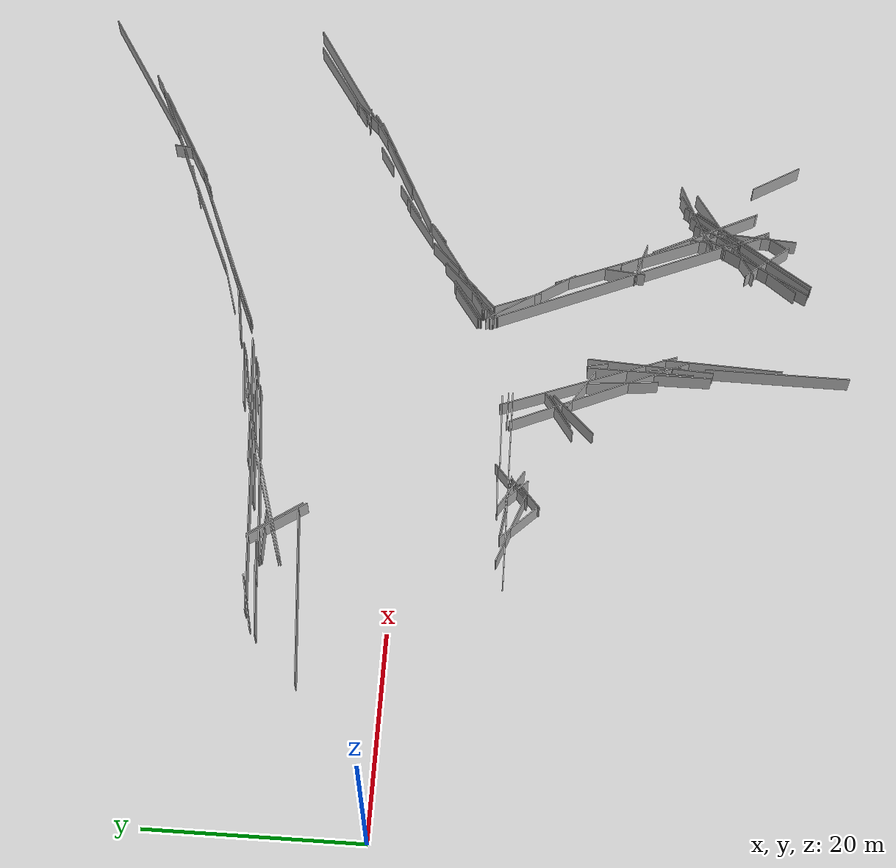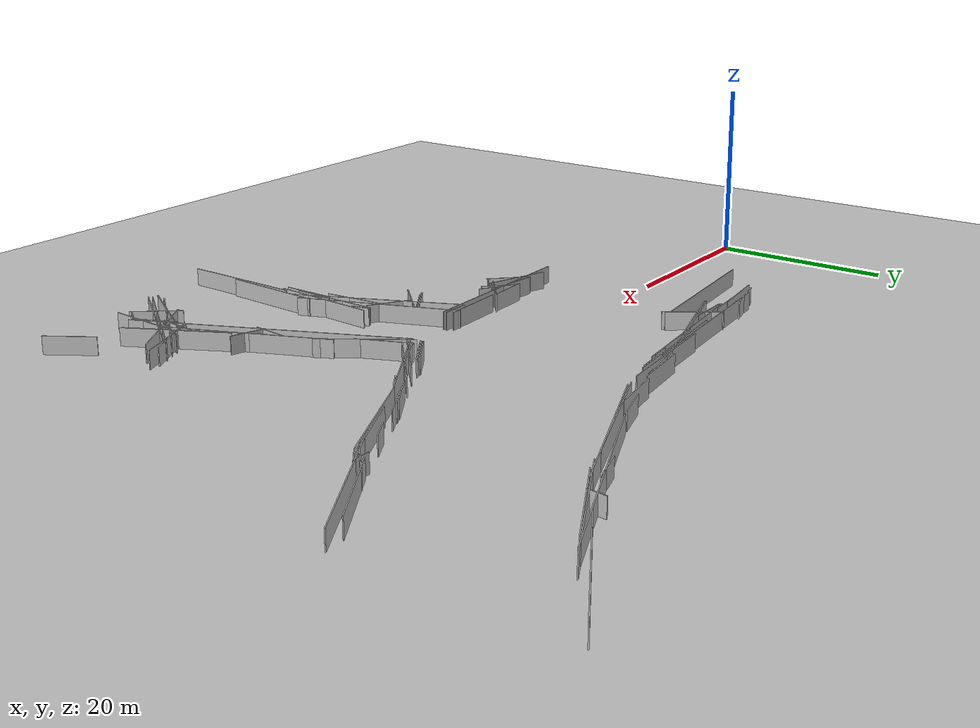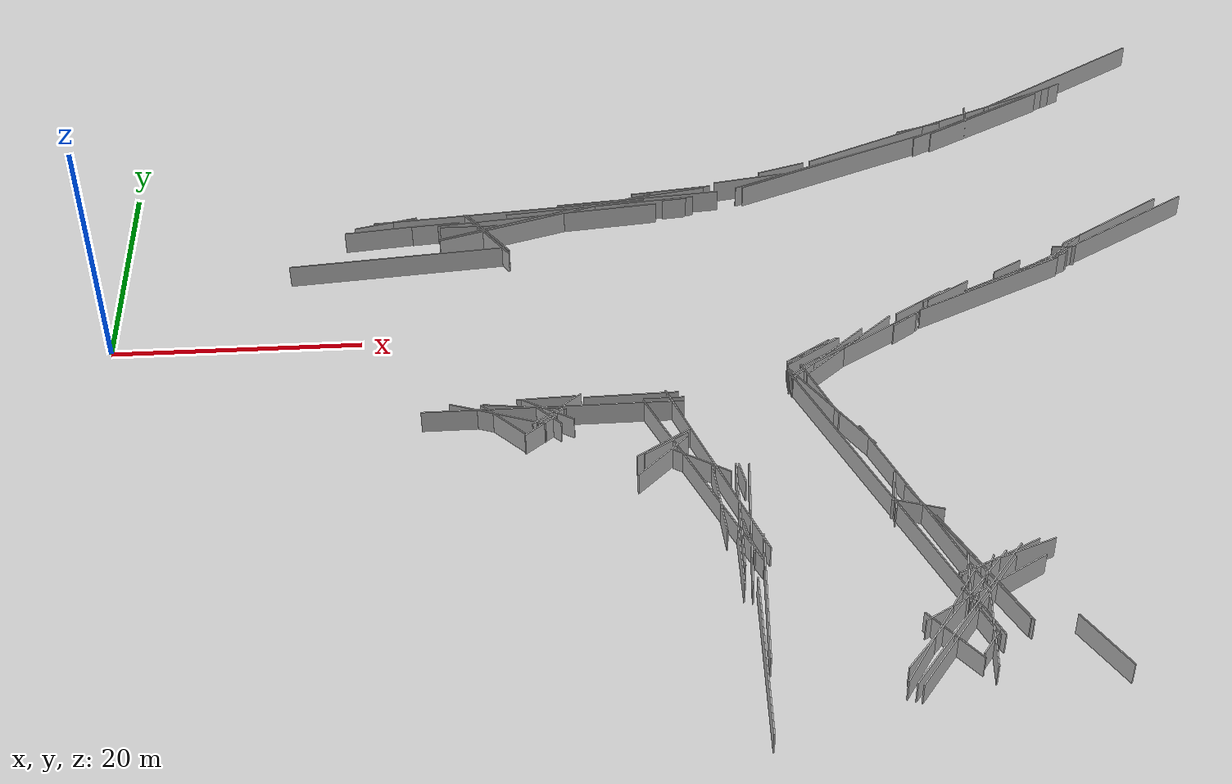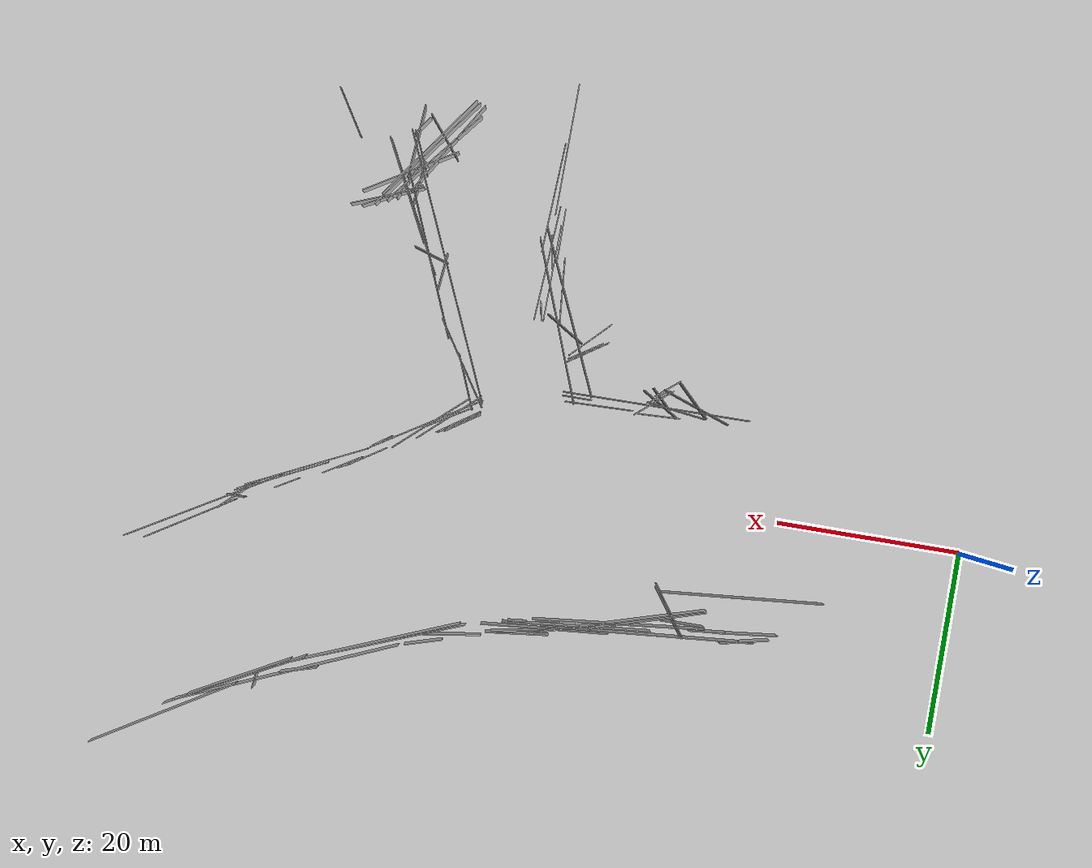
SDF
<sdf version="1.6">
 <world name="slam_world">
  <model name="ground_plane">
   <static>true</static>
   <link name="link">
    <collision name="collision">
     <geometry><plane><normal>0 0 1</normal><size>100 100</size></plane></geometry>
    </collision>
    <visual name="visual">
     <geometry><plane><normal>0 0 1</normal><size>100 100</size></plane></geometry>
     <material>
      <ambient>0.8 0.8 0.8 1</ambient>
      <diffuse>0.8 0.8 0.8 1</diffuse>
      <specular>0.8 0.8 0.8 1</specular>
     </material>
    </visual>
   </link>
  </model>
  <model name="wall_42">
   <static>true</static>
   <pose>56.1 -5.099999999999994 1.0 0 0 0.5984188934785382</pose>
   <link name="link">
    <collision name="collision"><geometry><box><size>5.325410782277732 0.1 2.0</size></box></geometry></collision>
    <visual name="visual">
     <geometry><box><size>5.325410782277732 0.1 2.0</size></box></geometry>
     <material><ambient>0.5 0.5 0.5 1</ambient><diffuse>0.7 0.7 0.7 1</diffuse></material>
    </visual>
   </link>
  </model>
  <model name="wall_45">
   <static>true</static>
   <pose>41.400000000000006 -9.29999999999999 1.0 0 0 0.027020449187265153</pose>
   <link name="link">
    <collision name="collision"><geometry><box><size>7.402702209328704 0.1 2.0</size></box></geometry></collision>
    <visual name="visual">
     <geometry><box><size>7.402702209328704 0.1 2.0</size></box></geometry>
     <material><ambient>0.5 0.5 0.5 1</ambient><diffuse>0.7 0.7 0.7 1</diffuse></material>
    </visual>
   </link>
  </model>
  <model name="wall_56">
   <static>true</static>
   <pose>83.00000000000001 10.000000000000014 1.0 0 0 0.5565993180102222</pose>
   <link name="link">
    <collision name="collision">
     <geometry><box><size>10.599999999999996 0.1 2.0</size></box></geometry>
    </collision>
    <visual name="visual">
     <geometry><box><size>10.599999999999996 0.1 2.0</size></box></geometry>
     <material><ambient>0.5 0.5 0.5 1</ambient><diffuse>0.7 0.7 0.7 1</diffuse></material>
    </visual>
   </link>
  </model>
  <model name="wall_72">
   <static>true</static>
   <pose>55.900000000000006 19.0 1.0 0 0 0.2914567944778645</pose>
   <link name="link">
    <collision name="collision"><geometry><box><size>4.176122603564217 0.1 2.0</size></box></geometry></collision>
    <visual name="visual">
     <geometry><box><size>4.176122603564217 0.1 2.0</size></box></geometry>
     <material><ambient>0.5 0.5 0.5 1</ambient><diffuse>0.7 0.7 0.7 1</diffuse></material>
    </visual>
   </link>
  </model>
  <model name="wall_81">
   <static>true</static>
   <pose>35.400000000000006 13.599999999999994 1.0 0 0 0.10711532335223177</pose>
   <link name="link">
    <collision name="collision">
     <geometry><box><size>18.707217858356163 0.1 2.0</size></box></geometry>
    </collision>
    <visual name="visual">
     <geometry><box><size>18.707217858356163 0.1 2.0</size></box></geometry>
     <material><ambient>0.5 0.5 0.5 1</ambient><diffuse>0.7 0.7 0.7 1</diffuse></material>
    </visual>
   </link>
  </model>
  <model name="wall_92">
   <static>true</static>
   <pose>82.4 31.200000000000017 1.0 0 0 0.5424315699899507</pose>
   <link name="link">
    <collision name="collision">
     <geometry><box><size>17.046993869888027 0.1 2.0</size></box></geometry>
    </collision>
    <visual name="visual">
     <geometry><box><size>17.046993869888027 0.1 2.0</size></box></geometry>
     <material><ambient>0.5 0.5 0.5 1</ambient><diffuse>0.7 0.7 0.7 1</diffuse></material>
    </visual>
   </link>
  </model>
  <model name="wall_101">
   <static>true</static>
   <pose>67.9 1.7000000000000028 1.0 0 0 0.5485494024505322</pose>
   <link name="link">
    <collision name="collision">
     <geometry><box><size>4.2190046219458015 0.1 2.0</size></box></geometry>
    </collision>
    <visual name="visual">
     <geometry><box><size>4.2190046219458015 0.1 2.0</size></box></geometry>
     <material><ambient>0.5 0.5 0.5 1</ambient><diffuse>0.7 0.7 0.7 1</diffuse></material>
    </visual>
   </link>
  </model>
  <model name="wall_105">
   <static>true</static>
   <pose>66.9 1.2000000000000028 1.0 0 0 0.5880026035475648</pose>
   <link name="link">
    <collision name="collision"><geometry><box><size>2.884441020371193 0.1 2.0</size></box></geometry></collision>
    <visual name="visual">
     <geometry><box><size>2.884441020371193 0.1 2.0</size></box></geometry>
     <material><ambient>0.5 0.5 0.5 1</ambient><diffuse>0.7 0.7 0.7 1</diffuse></material>
    </visual>
   </link>
  </model>
  <model name="wall_107">
   <static>true</static>
   <pose>35.300000000000004 -10.29999999999999 1.0 0 0 0.009803607479296117</pose>
   <link name="link">
    <collision name="collision">
     <geometry><box><size>20.400980368599928 0.1 2.0</size></box></geometry>
    </collision>
    <visual name="visual">
     <geometry><box><size>20.400980368599928 0.1 2.0</size></box></geometry>
     <material><ambient>0.5 0.5 0.5 1</ambient><diffuse>0.7 0.7 0.7 1</diffuse></material>
    </visual>
   </link>
  </model>
  <model name="wall_118">
   <static>true</static>
   <pose>48.800000000000004 -22.599999999999994 1.0 0 0 1.5515679276951893</pose>
   <link name="link">
    <collision name="collision"><geometry><box><size>10.40192289915668 0.1 2.0</size></box></geometry></collision>
    <visual name="visual">
     <geometry><box><size>10.40192289915668 0.1 2.0</size></box></geometry>
     <material><ambient>0.5 0.5 0.5 1</ambient><diffuse>0.7 0.7 0.7 1</diffuse></material>
    </visual>
   </link>
  </model>
  <model name="wall_135">
   <static>true</static>
   <pose>32.2 14.200000000000017 1.0 0 0 0.08673833867598511</pose>
   <link name="link">
    <collision name="collision"><geometry><box><size>23.08679276123039 0.1 2.0</size></box></geometry></collision>
    <visual name="visual">
     <geometry><box><size>23.08679276123039 0.1 2.0</size></box></geometry>
     <material><ambient>0.5 0.5 0.5 1</ambient><diffuse>0.7 0.7 0.7 1</diffuse></material>
    </visual>
   </link>
  </model>
  <model name="wall_160">
   <static>true</static>
   <pose>60.1 -21.39999999999999 1.0 0 0 -1.153898256385003</pose>
   <link name="link">
    <collision name="collision">
     <geometry><box><size>30.622867272677126 0.1 2.0</size></box></geometry>
    </collision>
    <visual name="visual">
     <geometry><box><size>30.622867272677126 0.1 2.0</size></box></geometry>
     <material><ambient>0.5 0.5 0.5 1</ambient><diffuse>0.7 0.7 0.7 1</diffuse></material>
    </visual>
   </link>
  </model>
  <model name="wall_164">
   <static>true</static>
   <pose>61.900000000000006 20.30000000000001 1.0 0 0 0.385882669398074</pose>
   <link name="link">
    <collision name="collision"><geometry><box><size>20.72389924700467 0.1 2.0</size></box></geometry></collision>
    <visual name="visual">
     <geometry><box><size>20.72389924700467 0.1 2.0</size></box></geometry>
     <material><ambient>0.5 0.5 0.5 1</ambient><diffuse>0.7 0.7 0.7 1</diffuse></material>
    </visual>
   </link>
  </model>
  <model name="wall_170">
   <static>true</static>
   <pose>70.0 24.700000000000017 1.0 0 0 0.40279094903964835</pose>
   <link name="link">
    <collision name="collision">
     <geometry><box><size>25.000799987200427 0.1 2.0</size></box></geometry>
    </collision>
    <visual name="visual">
     <geometry><box><size>25.000799987200427 0.1 2.0</size></box></geometry>
     <material><ambient>0.5 0.5 0.5 1</ambient><diffuse>0.7 0.7 0.7 1</diffuse></material>
    </visual>
   </link>
  </model>
  <model name="wall_173">
   <static>true</static>
   <pose>74.0 3.9000000000000057 1.0 0 0 0.45510080856819635</pose>
   <link name="link">
    <collision name="collision">
     <geometry><box><size>10.465180361560918 0.1 2.0</size></box></geometry>
    </collision>
    <visual name="visual">
     <geometry><box><size>10.465180361560918 0.1 2.0</size></box></geometry>
     <material><ambient>0.5 0.5 0.5 1</ambient><diffuse>0.7 0.7 0.7 1</diffuse></material>
    </visual>
   </link>
  </model>
  <model name="wall_193">
   <static>true</static>
   <pose>46.1 16.400000000000006 1.0 0 0 0.11710874456686599</pose>
   <link name="link">
    <collision name="collision"><geometry><box><size>6.846897107449474 0.1 2.0</size></box></geometry></collision>
    <visual name="visual">
     <geometry><box><size>6.846897107449474 0.1 2.0</size></box></geometry>
     <material><ambient>0.5 0.5 0.5 1</ambient><diffuse>0.7 0.7 0.7 1</diffuse></material>
    </visual>
   </link>
  </model>
  <model name="wall_219">
   <static>true</static>
   <pose>21.799999999999997 12.400000000000006 1.0 0 0 0.11379200714370967</pose>
   <link name="link">
    <collision name="collision"><geometry><box><size>7.045565981523416 0.1 2.0</size></box></geometry></collision>
    <visual name="visual">
     <geometry><box><size>7.045565981523416 0.1 2.0</size></box></geometry>
     <material><ambient>0.5 0.5 0.5 1</ambient><diffuse>0.7 0.7 0.7 1</diffuse></material>
    </visual>
   </link>
  </model>
  <model name="wall_220">
   <static>true</static>
   <pose>35.10000000000001 -11.399999999999991 1.0 0 0 0.674740942223551</pose>
   <link name="link">
    <collision name="collision"><geometry><box><size>2.561249694973136 0.1 2.0</size></box></geometry></collision>
    <visual name="visual">
     <geometry><box><size>2.561249694973136 0.1 2.0</size></box></geometry>
     <material><ambient>0.5 0.5 0.5 1</ambient><diffuse>0.7 0.7 0.7 1</diffuse></material>
    </visual>
   </link>
  </model>
  <model name="wall_224">
   <static>true</static>
   <pose>49.4 -36.099999999999994 1.0 0 0 1.5567127509720362</pose>
   <link name="link">
    <collision name="collision">
     <geometry><box><size>14.201408380861373 0.1 2.0</size></box></geometry>
    </collision>
    <visual name="visual">
     <geometry><box><size>14.201408380861373 0.1 2.0</size></box></geometry>
     <material><ambient>0.5 0.5 0.5 1</ambient><diffuse>0.7 0.7 0.7 1</diffuse></material>
    </visual>
   </link>
  </model>
  <model name="wall_230">
   <static>true</static>
   <pose>57.2 -5.3999999999999915 1.0 0 0 0.7345944593392271</pose>
   <link name="link">
    <collision name="collision"><geometry><box><size>8.354639429682155 0.1 2.0</size></box></geometry></collision>
    <visual name="visual">
     <geometry><box><size>8.354639429682155 0.1 2.0</size></box></geometry>
     <material><ambient>0.5 0.5 0.5 1</ambient><diffuse>0.7 0.7 0.7 1</diffuse></material>
    </visual>
   </link>
  </model>
  <model name="wall_236">
   <static>true</static>
   <pose>46.3 15.100000000000009 1.0 0 0 0.09966865249117048</pose>
   <link name="link">
    <collision name="collision">
     <geometry><box><size>2.0099751242241797 0.1 2.0</size></box></geometry>
    </collision>
    <visual name="visual">
     <geometry><box><size>2.0099751242241797 0.1 2.0</size></box></geometry>
     <material><ambient>0.5 0.5 0.5 1</ambient><diffuse>0.7 0.7 0.7 1</diffuse></material>
    </visual>
   </link>
  </model>
  <model name="wall_246">
   <static>true</static>
   <pose>43.2 15.400000000000006 1.0 0 0 0.08673833867598423</pose>
   <link name="link">
    <collision name="collision">
     <geometry><box><size>13.852075656738245 0.1 2.0</size></box></geometry>
    </collision>
    <visual name="visual">
     <geometry><box><size>13.852075656738245 0.1 2.0</size></box></geometry>
     <material><ambient>0.5 0.5 0.5 1</ambient><diffuse>0.7 0.7 0.7 1</diffuse></material>
    </visual>
   </link>
  </model>
  <model name="wall_296">
   <static>true</static>
   <pose>63.400000000000006 -32.699999999999996 1.0 0 0 0.8891905038544918</pose>
   <link name="link">
    <collision name="collision">
     <geometry><box><size>13.649908424601247 0.1 2.0</size></box></geometry>
    </collision>
    <visual name="visual">
     <geometry><box><size>13.649908424601247 0.1 2.0</size></box></geometry>
     <material><ambient>0.5 0.5 0.5 1</ambient><diffuse>0.7 0.7 0.7 1</diffuse></material>
    </visual>
   </link>
  </model>
  <model name="wall_302">
   <static>true</static>
   <pose>49.300000000000004 -18.39999999999999 1.0 0 0 -1.37340076694502</pose>
   <link name="link">
    <collision name="collision">
     <geometry><box><size>2.0396078054371123 0.1 2.0</size></box></geometry>
    </collision>
    <visual name="visual">
     <geometry><box><size>2.0396078054371123 0.1 2.0</size></box></geometry>
     <material><ambient>0.5 0.5 0.5 1</ambient><diffuse>0.7 0.7 0.7 1</diffuse></material>
    </visual>
   </link>
  </model>
  <model name="wall_310">
   <static>true</static>
   <pose>43.9 -9.799999999999997 1.0 0 0 0.0</pose>
   <link name="link">
    <collision name="collision"><geometry><box><size>3.200000000000003 0.1 2.0</size></box></geometry></collision>
    <visual name="visual">
     <geometry><box><size>3.200000000000003 0.1 2.0</size></box></geometry>
     <material><ambient>0.5 0.5 0.5 1</ambient><diffuse>0.7 0.7 0.7 1</diffuse></material>
    </visual>
   </link>
  </model>
  <model name="wall_313">
   <static>true</static>
   <pose>77.4 5.400000000000006 1.0 0 0 0.49934672168012284</pose>
   <link name="link">
    <collision name="collision"><geometry><box><size>2.505992817228343 0.1 2.0</size></box></geometry></collision>
    <visual name="visual">
     <geometry><box><size>2.505992817228343 0.1 2.0</size></box></geometry>
     <material><ambient>0.5 0.5 0.5 1</ambient><diffuse>0.7 0.7 0.7 1</diffuse></material>
    </visual>
   </link>
  </model>
  <model name="wall_314">
   <static>true</static>
   <pose>43.6 -14.79999999999999 1.0 0 0 0.5880026035475667</pose>
   <link name="link">
    <collision name="collision"><geometry><box><size>5.047771785649586 0.1 2.0</size></box></geometry></collision>
    <visual name="visual">
     <geometry><box><size>5.047771785649586 0.1 2.0</size></box></geometry>
     <material><ambient>0.5 0.5 0.5 1</ambient><diffuse>0.7 0.7 0.7 1</diffuse></material>
    </visual>
   </link>
  </model>
  <model name="wall_317">
   <static>true</static>
   <pose>59.1 19.30000000000001 1.0 0 0 0.3734971461064782</pose>
   <link name="link">
    <collision name="collision">
     <geometry><box><size>15.895911424010894 0.1 2.0</size></box></geometry>
    </collision>
    <visual name="visual">
     <geometry><box><size>15.895911424010894 0.1 2.0</size></box></geometry>
     <material><ambient>0.5 0.5 0.5 1</ambient><diffuse>0.7 0.7 0.7 1</diffuse></material>
    </visual>
   </link>
  </model>
  <model name="wall_331">
   <static>true</static>
   <pose>62.300000000000004 -22.4 1.0 0 0 -1.1743550435764551</pose>
   <link name="link">
    <collision name="collision">
     <geometry><box><size>18.646179233290667 0.1 2.0</size></box></geometry>
    </collision>
    <visual name="visual">
     <geometry><box><size>18.646179233290667 0.1 2.0</size></box></geometry>
     <material><ambient>0.5 0.5 0.5 1</ambient><diffuse>0.7 0.7 0.7 1</diffuse></material>
    </visual>
   </link>
  </model>
  <model name="wall_341">
   <static>true</static>
   <pose>67.2 -27.999999999999993 1.0 0 0 0.4764674194737078</pose>
   <link name="link">
    <collision name="collision"><geometry><box><size>6.977105417004954 0.1 2.0</size></box></geometry></collision>
    <visual name="visual">
     <geometry><box><size>6.977105417004954 0.1 2.0</size></box></geometry>
     <material><ambient>0.5 0.5 0.5 1</ambient><diffuse>0.7 0.7 0.7 1</diffuse></material>
    </visual>
   </link>
  </model>
  <model name="wall_346">
   <static>true</static>
   <pose>47.400000000000006 -20.89999999999999 1.0 0 0 -1.4852910331166929</pose>
   <link name="link">
    <collision name="collision"><geometry><box><size>7.025667228100118 0.1 2.0</size></box></geometry></collision>
    <visual name="visual">
     <geometry><box><size>7.025667228100118 0.1 2.0</size></box></geometry>
     <material><ambient>0.5 0.5 0.5 1</ambient><diffuse>0.7 0.7 0.7 1</diffuse></material>
    </visual>
   </link>
  </model>
  <model name="wall_352">
   <static>true</static>
   <pose>73.2 26.0 1.0 0 0 1.4711276743037403</pose>
   <link name="link">
    <collision name="collision"><geometry><box><size>2.009975124224177 0.1 2.0</size></box></geometry></collision>
    <visual name="visual">
     <geometry><box><size>2.009975124224177 0.1 2.0</size></box></geometry>
     <material><ambient>0.5 0.5 0.5 1</ambient><diffuse>0.7 0.7 0.7 1</diffuse></material>
    </visual>
   </link>
  </model>
  <model name="wall_390">
   <static>true</static>
   <pose>48.5 -26.799999999999997 1.0 0 0 -1.5707963267948966</pose>
   <link name="link">
    <collision name="collision"><geometry><box><size>5.599999999999994 0.1 2.0</size></box></geometry></collision>
    <visual name="visual">
     <geometry><box><size>5.599999999999994 0.1 2.0</size></box></geometry>
     <material><ambient>0.5 0.5 0.5 1</ambient><diffuse>0.7 0.7 0.7 1</diffuse></material>
    </visual>
   </link>
  </model>
  <model name="wall_400">
   <static>true</static>
   <pose>59.0 -4.499999999999993 1.0 0 0 0.7283173809911839</pose>
   <link name="link">
    <collision name="collision"><geometry><box><size>9.915644204992441 0.1 2.0</size></box></geometry></collision>
    <visual name="visual">
     <geometry><box><size>9.915644204992441 0.1 2.0</size></box></geometry>
     <material><ambient>0.5 0.5 0.5 1</ambient><diffuse>0.7 0.7 0.7 1</diffuse></material>
    </visual>
   </link>
  </model>
  <model name="wall_407">
   <static>true</static>
   <pose>71.5 2.4000000000000057 1.0 0 0 0.4506613260806335</pose>
   <link name="link">
    <collision name="collision">
     <geometry><box><size>13.775340286178055 0.1 2.0</size></box></geometry>
    </collision>
    <visual name="visual">
     <geometry><box><size>13.775340286178055 0.1 2.0</size></box></geometry>
     <material><ambient>0.5 0.5 0.5 1</ambient><diffuse>0.7 0.7 0.7 1</diffuse></material>
    </visual>
   </link>
  </model>
  <model name="wall_421">
   <static>true</static>
   <pose>53.00000000000001 17.700000000000017 1.0 0 0 0.1599131231582192</pose>
   <link name="link">
    <collision name="collision"><geometry><box><size>6.280127387243035 0.1 2.0</size></box></geometry></collision>
    <visual name="visual">
     <geometry><box><size>6.280127387243035 0.1 2.0</size></box></geometry>
     <material><ambient>0.5 0.5 0.5 1</ambient><diffuse>0.7 0.7 0.7 1</diffuse></material>
    </visual>
   </link>
  </model>
  <model name="wall_444">
   <static>true</static>
   <pose>47.400000000000006 -17.599999999999994 1.0 0 0 -1.2044019160456563</pose>
   <link name="link">
    <collision name="collision">
     <geometry><box><size>18.422811946062946 0.1 2.0</size></box></geometry>
    </collision>
    <visual name="visual">
     <geometry><box><size>18.422811946062946 0.1 2.0</size></box></geometry>
     <material><ambient>0.5 0.5 0.5 1</ambient><diffuse>0.7 0.7 0.7 1</diffuse></material>
    </visual>
   </link>
  </model>
  <model name="wall_462">
   <static>true</static>
   <pose>32.4 12.700000000000003 1.0 0 0 0.301951161830248</pose>
   <link name="link">
    <collision name="collision">
     <geometry><box><size>12.778106275970627 0.1 2.0</size></box></geometry>
    </collision>
    <visual name="visual">
     <geometry><box><size>12.778106275970627 0.1 2.0</size></box></geometry>
     <material><ambient>0.5 0.5 0.5 1</ambient><diffuse>0.7 0.7 0.7 1</diffuse></material>
    </visual>
   </link>
  </model>
  <model name="wall_466">
   <static>true</static>
   <pose>59.50000000000001 -4.29999999999999 1.0 0 0 0.5585993153435632</pose>
   <link name="link">
    <collision name="collision">
     <geometry><box><size>13.207573584879256 0.1 2.0</size></box></geometry>
    </collision>
    <visual name="visual">
     <geometry><box><size>13.207573584879256 0.1 2.0</size></box></geometry>
     <material><ambient>0.5 0.5 0.5 1</ambient><diffuse>0.7 0.7 0.7 1</diffuse></material>
    </visual>
   </link>
  </model>
  <model name="wall_481">
   <static>true</static>
   <pose>49.50000000000001 -23.599999999999994 1.0 0 0 1.5063694873693434</pose>
   <link name="link">
    <collision name="collision">
     <geometry><box><size>12.425779653607258 0.1 2.0</size></box></geometry>
    </collision>
    <visual name="visual">
     <geometry><box><size>12.425779653607258 0.1 2.0</size></box></geometry>
     <material><ambient>0.5 0.5 0.5 1</ambient><diffuse>0.7 0.7 0.7 1</diffuse></material>
    </visual>
   </link>
  </model>
  <model name="wall_484">
   <static>true</static>
   <pose>68.7 24.200000000000017 1.0 0 0 0.2914567944778645</pose>
   <link name="link">
    <collision name="collision"><geometry><box><size>4.176122603564217 0.1 2.0</size></box></geometry></collision>
    <visual name="visual">
     <geometry><box><size>4.176122603564217 0.1 2.0</size></box></geometry>
     <material><ambient>0.5 0.5 0.5 1</ambient><diffuse>0.7 0.7 0.7 1</diffuse></material>
    </visual>
   </link>
  </model>
  <model name="wall_496">
   <static>true</static>
   <pose>64.1 -33.8 1.0 0 0 0.94405342558385</pose>
   <link name="link">
    <collision name="collision">
     <geometry><box><size>14.322011031974515 0.1 2.0</size></box></geometry>
    </collision>
    <visual name="visual">
     <geometry><box><size>14.322011031974515 0.1 2.0</size></box></geometry>
     <material><ambient>0.5 0.5 0.5 1</ambient><diffuse>0.7 0.7 0.7 1</diffuse></material>
    </visual>
   </link>
  </model>
  <model name="wall_501">
   <static>true</static>
   <pose>34.900000000000006 -10.599999999999994 1.0 0 0 -0.5404195002705852</pose>
   <link name="link">
    <collision name="collision"><geometry><box><size>4.664761515876243 0.1 2.0</size></box></geometry></collision>
    <visual name="visual">
     <geometry><box><size>4.664761515876243 0.1 2.0</size></box></geometry>
     <material><ambient>0.5 0.5 0.5 1</ambient><diffuse>0.7 0.7 0.7 1</diffuse></material>
    </visual>
   </link>
  </model>
  <model name="wall_522">
   <static>true</static>
   <pose>56.1 -9.499999999999993 1.0 0 0 -1.178456182579382</pose>
   <link name="link">
    <collision name="collision">
     <geometry><box><size>6.2769419305900795 0.1 2.0</size></box></geometry>
    </collision>
    <visual name="visual">
     <geometry><box><size>6.2769419305900795 0.1 2.0</size></box></geometry>
     <material><ambient>0.5 0.5 0.5 1</ambient><diffuse>0.7 0.7 0.7 1</diffuse></material>
    </visual>
   </link>
  </model>
  <model name="wall_568">
   <static>true</static>
   <pose>21.700000000000003 13.200000000000003 1.0 0 0 0.22679884805388947</pose>
   <link name="link">
    <collision name="collision"><geometry><box><size>5.336665625650526 0.1 2.0</size></box></geometry></collision>
    <visual name="visual">
     <geometry><box><size>5.336665625650526 0.1 2.0</size></box></geometry>
     <material><ambient>0.5 0.5 0.5 1</ambient><diffuse>0.7 0.7 0.7 1</diffuse></material>
    </visual>
   </link>
  </model>
  <model name="wall_581">
   <static>true</static>
   <pose>46.2 -18.699999999999996 1.0 0 0 -1.1493771199070917</pose>
   <link name="link">
    <collision name="collision"><geometry><box><size>19.06829829848484 0.1 2.0</size></box></geometry></collision>
    <visual name="visual">
     <geometry><box><size>19.06829829848484 0.1 2.0</size></box></geometry>
     <material><ambient>0.5 0.5 0.5 1</ambient><diffuse>0.7 0.7 0.7 1</diffuse></material>
    </visual>
   </link>
  </model>
  <model name="wall_587">
   <static>true</static>
   <pose>30.300000000000004 11.5 1.0 0 0 -0.9467732738181387</pose>
   <link name="link">
    <collision name="collision">
     <geometry><box><size>6.1611687202997505 0.1 2.0</size></box></geometry>
    </collision>
    <visual name="visual">
     <geometry><box><size>6.1611687202997505 0.1 2.0</size></box></geometry>
     <material><ambient>0.5 0.5 0.5 1</ambient><diffuse>0.7 0.7 0.7 1</diffuse></material>
    </visual>
   </link>
  </model>
  <model name="wall_612">
   <static>true</static>
   <pose>43.5 -16.19999999999999 1.0 0 0 0.7853981633974483</pose>
   <link name="link">
    <collision name="collision"><geometry><box><size>5.656854249492381 0.1 2.0</size></box></geometry></collision>
    <visual name="visual">
     <geometry><box><size>5.656854249492381 0.1 2.0</size></box></geometry>
     <material><ambient>0.5 0.5 0.5 1</ambient><diffuse>0.7 0.7 0.7 1</diffuse></material>
    </visual>
   </link>
  </model>
  <model name="wall_614">
   <static>true</static>
   <pose>65.6 -34.19999999999999 1.0 0 0 1.4959364790841287</pose>
   <link name="link">
    <collision name="collision"><geometry><box><size>8.022468448052633 0.1 2.0</size></box></geometry></collision>
    <visual name="visual">
     <geometry><box><size>8.022468448052633 0.1 2.0</size></box></geometry>
     <material><ambient>0.5 0.5 0.5 1</ambient><diffuse>0.7 0.7 0.7 1</diffuse></material>
    </visual>
   </link>
  </model>
  <model name="wall_618">
   <static>true</static>
   <pose>74.9 26.000000000000014 1.0 0 0 0.49394136891958057</pose>
   <link name="link">
    <collision name="collision">
     <geometry><box><size>11.811858448186724 0.1 2.0</size></box></geometry>
    </collision>
    <visual name="visual">
     <geometry><box><size>11.811858448186724 0.1 2.0</size></box></geometry>
     <material><ambient>0.5 0.5 0.5 1</ambient><diffuse>0.7 0.7 0.7 1</diffuse></material>
    </visual>
   </link>
  </model>
  <model name="wall_654">
   <static>true</static>
   <pose>35.6 -10.599999999999994 1.0 0 0 0.6998928697192422</pose>
   <link name="link">
    <collision name="collision"><geometry><box><size>4.967896939349679 0.1 2.0</size></box></geometry></collision>
    <visual name="visual">
     <geometry><box><size>4.967896939349679 0.1 2.0</size></box></geometry>
     <material><ambient>0.5 0.5 0.5 1</ambient><diffuse>0.7 0.7 0.7 1</diffuse></material>
    </visual>
   </link>
  </model>
  <model name="wall_667">
   <static>true</static>
   <pose>35.3 13.299999999999997 1.0 0 0 0.2914567944778674</pose>
   <link name="link">
    <collision name="collision">
     <geometry><box><size>18.792551716038993 0.1 2.0</size></box></geometry>
    </collision>
    <visual name="visual">
     <geometry><box><size>18.792551716038993 0.1 2.0</size></box></geometry>
     <material><ambient>0.5 0.5 0.5 1</ambient><diffuse>0.7 0.7 0.7 1</diffuse></material>
    </visual>
   </link>
  </model>
  <model name="wall_668">
   <static>true</static>
   <pose>28.700000000000003 12.400000000000006 1.0 0 0 0.0</pose>
   <link name="link">
    <collision name="collision"><geometry><box><size>4.800000000000011 0.1 2.0</size></box></geometry></collision>
    <visual name="visual">
     <geometry><box><size>4.800000000000011 0.1 2.0</size></box></geometry>
     <material><ambient>0.5 0.5 0.5 1</ambient><diffuse>0.7 0.7 0.7 1</diffuse></material>
    </visual>
   </link>
  </model>
  <model name="wall_689">
   <static>true</static>
   <pose>75.30000000000001 26.400000000000006 1.0 0 0 0.48562209329746975</pose>
   <link name="link">
    <collision name="collision"><geometry><box><size>16.28250594963811 0.1 2.0</size></box></geometry></collision>
    <visual name="visual">
     <geometry><box><size>16.28250594963811 0.1 2.0</size></box></geometry>
     <material><ambient>0.5 0.5 0.5 1</ambient><diffuse>0.7 0.7 0.7 1</diffuse></material>
    </visual>
   </link>
  </model>
  <model name="wall_704">
   <static>true</static>
   <pose>46.1 16.099999999999994 1.0 0 0 0.17670885607003636</pose>
   <link name="link">
    <collision name="collision"><geometry><box><size>5.688585061331166 0.1 2.0</size></box></geometry></collision>
    <visual name="visual">
     <geometry><box><size>5.688585061331166 0.1 2.0</size></box></geometry>
     <material><ambient>0.5 0.5 0.5 1</ambient><diffuse>0.7 0.7 0.7 1</diffuse></material>
    </visual>
   </link>
  </model>
  <model name="wall_709">
   <static>true</static>
   <pose>62.1 -33.99999999999999 1.0 0 0 1.01914134426635</pose>
   <link name="link">
    <collision name="collision">
     <geometry><box><size>12.211470017978987 0.1 2.0</size></box></geometry>
    </collision>
    <visual name="visual">
     <geometry><box><size>12.211470017978987 0.1 2.0</size></box></geometry>
     <material><ambient>0.5 0.5 0.5 1</ambient><diffuse>0.7 0.7 0.7 1</diffuse></material>
    </visual>
   </link>
  </model>
  <model name="wall_723">
   <static>true</static>
   <pose>34.800000000000004 -9.29999999999999 1.0 0 0 0.04345089539153138</pose>
   <link name="link">
    <collision name="collision"><geometry><box><size>4.604345773288544 0.1 2.0</size></box></geometry></collision>
    <visual name="visual">
     <geometry><box><size>4.604345773288544 0.1 2.0</size></box></geometry>
     <material><ambient>0.5 0.5 0.5 1</ambient><diffuse>0.7 0.7 0.7 1</diffuse></material>
    </visual>
   </link>
  </model>
  <model name="wall_739">
   <static>true</static>
   <pose>65.3 0.29999999999999716 1.0 0 0 0.5763752205911827</pose>
   <link name="link">
    <collision name="collision"><geometry><box><size>4.770744176750622 0.1 2.0</size></box></geometry></collision>
    <visual name="visual">
     <geometry><box><size>4.770744176750622 0.1 2.0</size></box></geometry>
     <material><ambient>0.5 0.5 0.5 1</ambient><diffuse>0.7 0.7 0.7 1</diffuse></material>
    </visual>
   </link>
  </model>
  <model name="wall_773">
   <static>true</static>
   <pose>30.200000000000003 11.299999999999997 1.0 0 0 -0.9575889779203864</pose>
   <link name="link">
    <collision name="collision"><geometry><box><size>6.603029607687683 0.1 2.0</size></box></geometry></collision>
    <visual name="visual">
     <geometry><box><size>6.603029607687683 0.1 2.0</size></box></geometry>
     <material><ambient>0.5 0.5 0.5 1</ambient><diffuse>0.7 0.7 0.7 1</diffuse></material>
    </visual>
   </link>
  </model>
  <model name="wall_776">
   <static>true</static>
   <pose>57.400000000000006 -5.299999999999997 1.0 0 0 0.5404195002705842</pose>
   <link name="link">
    <collision name="collision"><geometry><box><size>5.830951894845301 0.1 2.0</size></box></geometry></collision>
    <visual name="visual">
     <geometry><box><size>5.830951894845301 0.1 2.0</size></box></geometry>
     <material><ambient>0.5 0.5 0.5 1</ambient><diffuse>0.7 0.7 0.7 1</diffuse></material>
    </visual>
   </link>
  </model>
  <model name="wall_796">
   <static>true</static>
   <pose>81.9 8.400000000000006 1.0 0 0 0.5328438876193884</pose>
   <link name="link">
    <collision name="collision">
     <geometry><box><size>18.110770276274824 0.1 2.0</size></box></geometry>
    </collision>
    <visual name="visual">
     <geometry><box><size>18.110770276274824 0.1 2.0</size></box></geometry>
     <material><ambient>0.5 0.5 0.5 1</ambient><diffuse>0.7 0.7 0.7 1</diffuse></material>
    </visual>
   </link>
  </model>
  <model name="wall_826">
   <static>true</static>
   <pose>64.6 -29.69999999999999 1.0 0 0 1.4513674007765565</pose>
   <link name="link">
    <collision name="collision"><geometry><box><size>5.03587132480567 0.1 2.0</size></box></geometry></collision>
    <visual name="visual">
     <geometry><box><size>5.03587132480567 0.1 2.0</size></box></geometry>
     <material><ambient>0.5 0.5 0.5 1</ambient><diffuse>0.7 0.7 0.7 1</diffuse></material>
    </visual>
   </link>
  </model>
  <model name="wall_828">
   <static>true</static>
   <pose>25.900000000000006 12.799999999999997 1.0 0 0 0.09966865249116344</pose>
   <link name="link">
    <collision name="collision"><geometry><box><size>4.019950248448357 0.1 2.0</size></box></geometry></collision>
    <visual name="visual">
     <geometry><box><size>4.019950248448357 0.1 2.0</size></box></geometry>
     <material><ambient>0.5 0.5 0.5 1</ambient><diffuse>0.7 0.7 0.7 1</diffuse></material>
    </visual>
   </link>
  </model>
  <model name="wall_838">
   <static>true</static>
   <pose>64.2 -33.099999999999994 1.0 0 0 0.9298397417720918</pose>
   <link name="link">
    <collision name="collision">
     <geometry><box><size>15.720050890502867 0.1 2.0</size></box></geometry>
    </collision>
    <visual name="visual">
     <geometry><box><size>15.720050890502867 0.1 2.0</size></box></geometry>
     <material><ambient>0.5 0.5 0.5 1</ambient><diffuse>0.7 0.7 0.7 1</diffuse></material>
    </visual>
   </link>
  </model>
  <model name="wall_843">
   <static>true</static>
   <pose>56.00000000000001 -4.999999999999993 1.0 0 0 0.5880026035475667</pose>
   <link name="link">
    <collision name="collision"><geometry><box><size>5.047771785649586 0.1 2.0</size></box></geometry></collision>
    <visual name="visual">
     <geometry><box><size>5.047771785649586 0.1 2.0</size></box></geometry>
     <material><ambient>0.5 0.5 0.5 1</ambient><diffuse>0.7 0.7 0.7 1</diffuse></material>
    </visual>
   </link>
  </model>
  <model name="wall_850">
   <static>true</static>
   <pose>43.800000000000004 -14.899999999999999 1.0 0 0 0.5743048301747035</pose>
   <link name="link">
    <collision name="collision">
     <geometry><box><size>4.0496913462633115 0.1 2.0</size></box></geometry>
    </collision>
    <visual name="visual">
     <geometry><box><size>4.0496913462633115 0.1 2.0</size></box></geometry>
     <material><ambient>0.5 0.5 0.5 1</ambient><diffuse>0.7 0.7 0.7 1</diffuse></material>
    </visual>
   </link>
  </model>
  <model name="wall_861">
   <static>true</static>
   <pose>31.0 -10.899999999999991 1.0 0 0 -0.3378781882402775</pose>
   <link name="link">
    <collision name="collision"><geometry><box><size>7.843468620451034 0.1 2.0</size></box></geometry></collision>
    <visual name="visual">
     <geometry><box><size>7.843468620451034 0.1 2.0</size></box></geometry>
     <material><ambient>0.5 0.5 0.5 1</ambient><diffuse>0.7 0.7 0.7 1</diffuse></material>
    </visual>
   </link>
  </model>
  <model name="wall_880">
   <static>true</static>
   <pose>73.2 -36.199999999999996 1.0 0 0 -1.012197011451334</pose>
   <link name="link">
    <collision name="collision"><geometry><box><size>5.66038867923396 0.1 2.0</size></box></geometry></collision>
    <visual name="visual">
     <geometry><box><size>5.66038867923396 0.1 2.0</size></box></geometry>
     <material><ambient>0.5 0.5 0.5 1</ambient><diffuse>0.7 0.7 0.7 1</diffuse></material>
    </visual>
   </link>
  </model>
  <model name="wall_900">
   <static>true</static>
   <pose>62.00000000000001 -22.4 1.0 0 0 -0.30587887140485304</pose>
   <link name="link">
    <collision name="collision"><geometry><box><size>3.984971769034253 0.1 2.0</size></box></geometry></collision>
    <visual name="visual">
     <geometry><box><size>3.984971769034253 0.1 2.0</size></box></geometry>
     <material><ambient>0.5 0.5 0.5 1</ambient><diffuse>0.7 0.7 0.7 1</diffuse></material>
    </visual>
   </link>
  </model>
  <model name="wall_901">
   <static>true</static>
   <pose>67.70000000000002 -27.89999999999999 1.0 0 0 0.37596095387130524</pose>
   <link name="link">
    <collision name="collision"><geometry><box><size>8.170679286326207 0.1 2.0</size></box></geometry></collision>
    <visual name="visual">
     <geometry><box><size>8.170679286326207 0.1 2.0</size></box></geometry>
     <material><ambient>0.5 0.5 0.5 1</ambient><diffuse>0.7 0.7 0.7 1</diffuse></material>
    </visual>
   </link>
  </model>
  <model name="wall_918">
   <static>true</static>
   <pose>65.70000000000002 -30.9 1.0 0 0 0.5434775947130428</pose>
   <link name="link">
    <collision name="collision">
     <geometry><box><size>11.216059914247968 0.1 2.0</size></box></geometry>
    </collision>
    <visual name="visual">
     <geometry><box><size>11.216059914247968 0.1 2.0</size></box></geometry>
     <material><ambient>0.5 0.5 0.5 1</ambient><diffuse>0.7 0.7 0.7 1</diffuse></material>
    </visual>
   </link>
  </model>
  <model name="wall_925">
   <static>true</static>
   <pose>65.2 -36.0 1.0 0 0 0.9600703624056861</pose>
   <link name="link">
    <collision name="collision">
     <geometry><box><size>2.4413111231467437 0.1 2.0</size></box></geometry>
    </collision>
    <visual name="visual">
     <geometry><box><size>2.4413111231467437 0.1 2.0</size></box></geometry>
     <material><ambient>0.5 0.5 0.5 1</ambient><diffuse>0.7 0.7 0.7 1</diffuse></material>
    </visual>
   </link>
  </model>
  <model name="wall_931">
   <static>true</static>
   <pose>65.6 -30.099999999999994 1.0 0 0 1.124690777851492</pose>
   <link name="link">
    <collision name="collision"><geometry><box><size>5.099019513592781 0.1 2.0</size></box></geometry></collision>
    <visual name="visual">
     <geometry><box><size>5.099019513592781 0.1 2.0</size></box></geometry>
     <material><ambient>0.5 0.5 0.5 1</ambient><diffuse>0.7 0.7 0.7 1</diffuse></material>
    </visual>
   </link>
  </model>
  <model name="wall_939">
   <static>true</static>
   <pose>34.900000000000006 -11.199999999999989 1.0 0 0 -0.7853981633974483</pose>
   <link name="link">
    <collision name="collision">
     <geometry><box><size>2.8284271247461903 0.1 2.0</size></box></geometry>
    </collision>
    <visual name="visual">
     <geometry><box><size>2.8284271247461903 0.1 2.0</size></box></geometry>
     <material><ambient>0.5 0.5 0.5 1</ambient><diffuse>0.7 0.7 0.7 1</diffuse></material>
    </visual>
   </link>
  </model>
  <model name="wall_948">
   <static>true</static>
   <pose>50.0 -30.699999999999996 1.0 0 0 1.5199926227366753</pose>
   <link name="link">
    <collision name="collision"><geometry><box><size>11.81524439019354 0.1 2.0</size></box></geometry></collision>
    <visual name="visual">
     <geometry><box><size>11.81524439019354 0.1 2.0</size></box></geometry>
     <material><ambient>0.5 0.5 0.5 1</ambient><diffuse>0.7 0.7 0.7 1</diffuse></material>
    </visual>
   </link>
  </model>
  <model name="wall_952">
   <static>true</static>
   <pose>33.1 -10.199999999999996 1.0 0 0 -0.12435499454676116</pose>
   <link name="link">
    <collision name="collision"><geometry><box><size>6.449806198638831 0.1 2.0</size></box></geometry></collision>
    <visual name="visual">
     <geometry><box><size>6.449806198638831 0.1 2.0</size></box></geometry>
     <material><ambient>0.5 0.5 0.5 1</ambient><diffuse>0.7 0.7 0.7 1</diffuse></material>
    </visual>
   </link>
  </model>
  <model name="wall_969">
   <static>true</static>
   <pose>64.9 -33.099999999999994 1.0 0 0 -1.1606689862534052</pose>
   <link name="link">
    <collision name="collision">
     <geometry><box><size>5.0159744815937755 0.1 2.0</size></box></geometry>
    </collision>
    <visual name="visual">
     <geometry><box><size>5.0159744815937755 0.1 2.0</size></box></geometry>
     <material><ambient>0.5 0.5 0.5 1</ambient><diffuse>0.7 0.7 0.7 1</diffuse></material>
    </visual>
   </link>
  </model>
  <model name="wall_976">
   <static>true</static>
   <pose>64.8 -27.199999999999996 1.0 0 0 -1.0954533446284018</pose>
   <link name="link">
    <collision name="collision">
     <geometry><box><size>15.295751043999122 0.1 2.0</size></box></geometry>
    </collision>
    <visual name="visual">
     <geometry><box><size>15.295751043999122 0.1 2.0</size></box></geometry>
     <material><ambient>0.5 0.5 0.5 1</ambient><diffuse>0.7 0.7 0.7 1</diffuse></material>
    </visual>
   </link>
  </model>
  <model name="wall_985">
   <static>true</static>
   <pose>78.6 6.800000000000011 1.0 0 0 0.7551044034786706</pose>
   <link name="link">
    <collision name="collision">
     <geometry><box><size>4.6690470119714975 0.1 2.0</size></box></geometry>
    </collision>
    <visual name="visual">
     <geometry><box><size>4.6690470119714975 0.1 2.0</size></box></geometry>
     <material><ambient>0.5 0.5 0.5 1</ambient><diffuse>0.7 0.7 0.7 1</diffuse></material>
    </visual>
   </link>
  </model>
  <model name="wall_992">
   <static>true</static>
   <pose>46.4 -16.89999999999999 1.0 0 0 -0.55430749620155</pose>
   <link name="link">
    <collision name="collision">
     <geometry><box><size>4.9396356140913875 0.1 2.0</size></box></geometry>
    </collision>
    <visual name="visual">
     <geometry><box><size>4.9396356140913875 0.1 2.0</size></box></geometry>
     <material><ambient>0.5 0.5 0.5 1</ambient><diffuse>0.7 0.7 0.7 1</diffuse></material>
    </visual>
   </link>
  </model>
  <model name="wall_1013">
   <static>true</static>
   <pose>22.700000000000003 8.600000000000009 1.0 0 0 0.09065988720074482</pose>
   <link name="link">
    <collision name="collision">
     <geometry><box><size>17.672577627499614 0.1 2.0</size></box></geometry>
    </collision>
    <visual name="visual">
     <geometry><box><size>17.672577627499614 0.1 2.0</size></box></geometry>
     <material><ambient>0.5 0.5 0.5 1</ambient><diffuse>0.7 0.7 0.7 1</diffuse></material>
    </visual>
   </link>
  </model>
  <model name="wall_1032">
   <static>true</static>
   <pose>62.7 -35.199999999999996 1.0 0 0 -0.8850668158886101</pose>
   <link name="link">
    <collision name="collision"><geometry><box><size>5.685068161420747 0.1 2.0</size></box></geometry></collision>
    <visual name="visual">
     <geometry><box><size>5.685068161420747 0.1 2.0</size></box></geometry>
     <material><ambient>0.5 0.5 0.5 1</ambient><diffuse>0.7 0.7 0.7 1</diffuse></material>
    </visual>
   </link>
  </model>
  <model name="wall_1050">
   <static>true</static>
   <pose>73.30000000000001 4.500000000000014 1.0 0 0 0.5280744484263604</pose>
   <link name="link">
    <collision name="collision">
     <geometry><box><size>2.7784887978899686 0.1 2.0</size></box></geometry>
    </collision>
    <visual name="visual">
     <geometry><box><size>2.7784887978899686 0.1 2.0</size></box></geometry>
     <material><ambient>0.5 0.5 0.5 1</ambient><diffuse>0.7 0.7 0.7 1</diffuse></material>
    </visual>
   </link>
  </model>
  <model name="wall_1057">
   <static>true</static>
   <pose>78.50000000000001 6.800000000000011 1.0 0 0 0.0</pose>
   <link name="link">
    <collision name="collision"><geometry><box><size>2.0 0.1 2.0</size></box></geometry></collision>
    <visual name="visual">
     <geometry><box><size>2.0 0.1 2.0</size></box></geometry>
     <material><ambient>0.5 0.5 0.5 1</ambient><diffuse>0.7 0.7 0.7 1</diffuse></material>
    </visual>
   </link>
  </model>
  <model name="wall_1062">
   <static>true</static>
   <pose>31.400000000000006 -11.499999999999993 1.0 0 0 -0.7853981633974462</pose>
   <link name="link">
    <collision name="collision"><geometry><box><size>4.808326112068521 0.1 2.0</size></box></geometry></collision>
    <visual name="visual">
     <geometry><box><size>4.808326112068521 0.1 2.0</size></box></geometry>
     <material><ambient>0.5 0.5 0.5 1</ambient><diffuse>0.7 0.7 0.7 1</diffuse></material>
    </visual>
   </link>
  </model>
  <model name="wall_1068">
   <static>true</static>
   <pose>49.2 -24.89999999999999 1.0 0 0 -1.396124127786659</pose>
   <link name="link">
    <collision name="collision"><geometry><box><size>3.452535300326418 0.1 2.0</size></box></geometry></collision>
    <visual name="visual">
     <geometry><box><size>3.452535300326418 0.1 2.0</size></box></geometry>
     <material><ambient>0.5 0.5 0.5 1</ambient><diffuse>0.7 0.7 0.7 1</diffuse></material>
    </visual>
   </link>
  </model>
  <model name="wall_1070">
   <static>true</static>
   <pose>65.80000000000001 -28.89999999999999 1.0 0 0 -1.099630062481787</pose>
   <link name="link">
    <collision name="collision">
     <geometry><box><size>11.896217886370431 0.1 2.0</size></box></geometry>
    </collision>
    <visual name="visual">
     <geometry><box><size>11.896217886370431 0.1 2.0</size></box></geometry>
     <material><ambient>0.5 0.5 0.5 1</ambient><diffuse>0.7 0.7 0.7 1</diffuse></material>
    </visual>
   </link>
  </model>
  <model name="wall_1072">
   <static>true</static>
   <pose>34.300000000000004 -12.399999999999991 1.0 0 0 0.6947382761967049</pose>
   <link name="link">
    <collision name="collision"><geometry><box><size>3.124099870362655 0.1 2.0</size></box></geometry></collision>
    <visual name="visual">
     <geometry><box><size>3.124099870362655 0.1 2.0</size></box></geometry>
     <material><ambient>0.5 0.5 0.5 1</ambient><diffuse>0.7 0.7 0.7 1</diffuse></material>
    </visual>
   </link>
  </model>
  <model name="wall_1074">
   <static>true</static>
   <pose>56.800000000000004 -11.399999999999999 1.0 0 0 -0.9880568325449245</pose>
   <link name="link">
    <collision name="collision">
     <geometry><box><size>10.539449701004314 0.1 2.0</size></box></geometry>
    </collision>
    <visual name="visual">
     <geometry><box><size>10.539449701004314 0.1 2.0</size></box></geometry>
     <material><ambient>0.5 0.5 0.5 1</ambient><diffuse>0.7 0.7 0.7 1</diffuse></material>
    </visual>
   </link>
  </model>
  <model name="wall_1081">
   <static>true</static>
   <pose>42.900000000000006 14.5 1.0 0 0 0.08314123188843633</pose>
   <link name="link">
    <collision name="collision">
     <geometry><box><size>2.4083189157584637 0.1 2.0</size></box></geometry>
    </collision>
    <visual name="visual">
     <geometry><box><size>2.4083189157584637 0.1 2.0</size></box></geometry>
     <material><ambient>0.5 0.5 0.5 1</ambient><diffuse>0.7 0.7 0.7 1</diffuse></material>
    </visual>
   </link>
  </model>
  <model name="wall_1087">
   <static>true</static>
   <pose>63.900000000000006 -1.6999999999999957 1.0 0 0 0.6107259643892058</pose>
   <link name="link">
    <collision name="collision">
     <geometry><box><size>2.4413111231467357 0.1 2.0</size></box></geometry>
    </collision>
    <visual name="visual">
     <geometry><box><size>2.4413111231467357 0.1 2.0</size></box></geometry>
     <material><ambient>0.5 0.5 0.5 1</ambient><diffuse>0.7 0.7 0.7 1</diffuse></material>
    </visual>
   </link>
  </model>
  <model name="wall_1104">
   <static>true</static>
   <pose>39.900000000000006 14.600000000000009 1.0 0 0 0.09966865249116168</pose>
   <link name="link">
    <collision name="collision">
     <geometry><box><size>16.079800993793423 0.1 2.0</size></box></geometry>
    </collision>
    <visual name="visual">
     <geometry><box><size>16.079800993793423 0.1 2.0</size></box></geometry>
     <material><ambient>0.5 0.5 0.5 1</ambient><diffuse>0.7 0.7 0.7 1</diffuse></material>
    </visual>
   </link>
  </model>
  <model name="wall_1128">
   <static>true</static>
   <pose>60.5 -20.799999999999997 1.0 0 0 1.4711276743037331</pose>
   <link name="link">
    <collision name="collision"><geometry><box><size>4.019950248448357 0.1 2.0</size></box></geometry></collision>
    <visual name="visual">
     <geometry><box><size>4.019950248448357 0.1 2.0</size></box></geometry>
     <material><ambient>0.5 0.5 0.5 1</ambient><diffuse>0.7 0.7 0.7 1</diffuse></material>
    </visual>
   </link>
  </model>
  <model name="wall_1129">
   <static>true</static>
   <pose>55.7 -4.999999999999993 1.0 0 0 0.5880026035475666</pose>
   <link name="link">
    <collision name="collision"><geometry><box><size>4.326661530556778 0.1 2.0</size></box></geometry></collision>
    <visual name="visual">
     <geometry><box><size>4.326661530556778 0.1 2.0</size></box></geometry>
     <material><ambient>0.5 0.5 0.5 1</ambient><diffuse>0.7 0.7 0.7 1</diffuse></material>
    </visual>
   </link>
  </model>
 </world>
</sdf>
